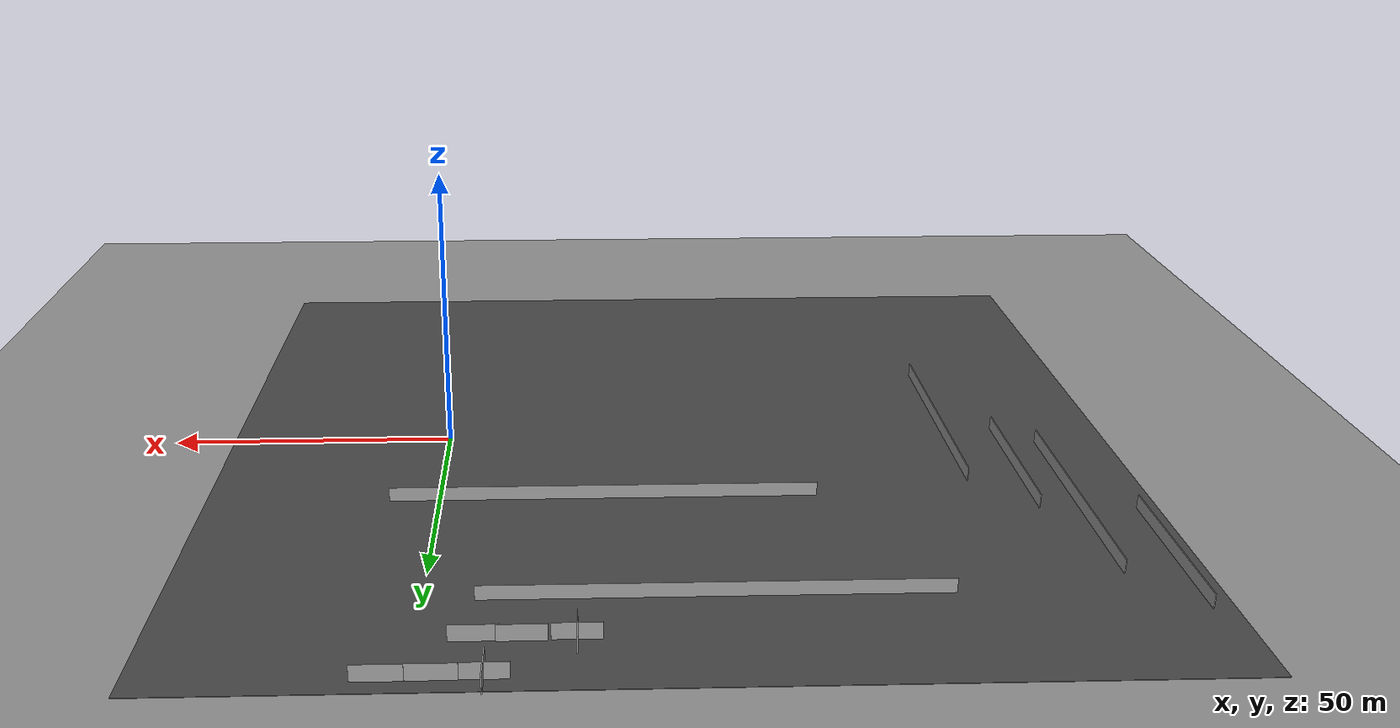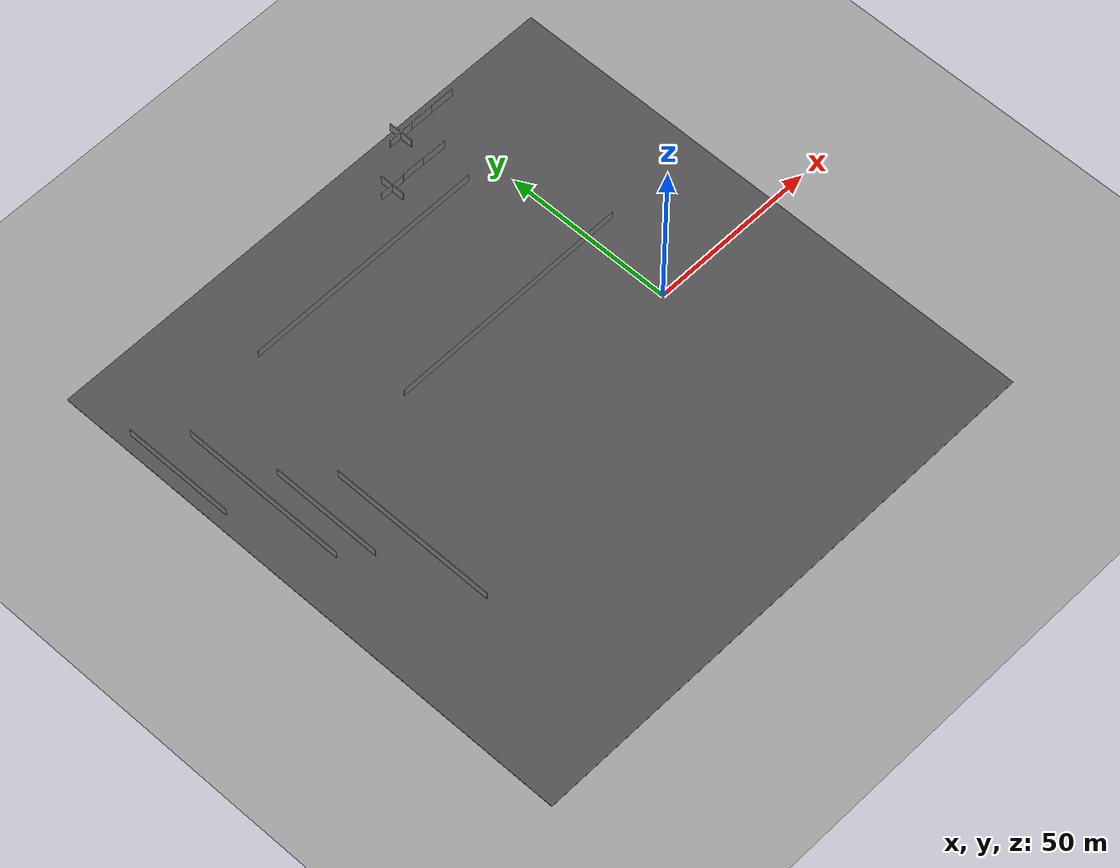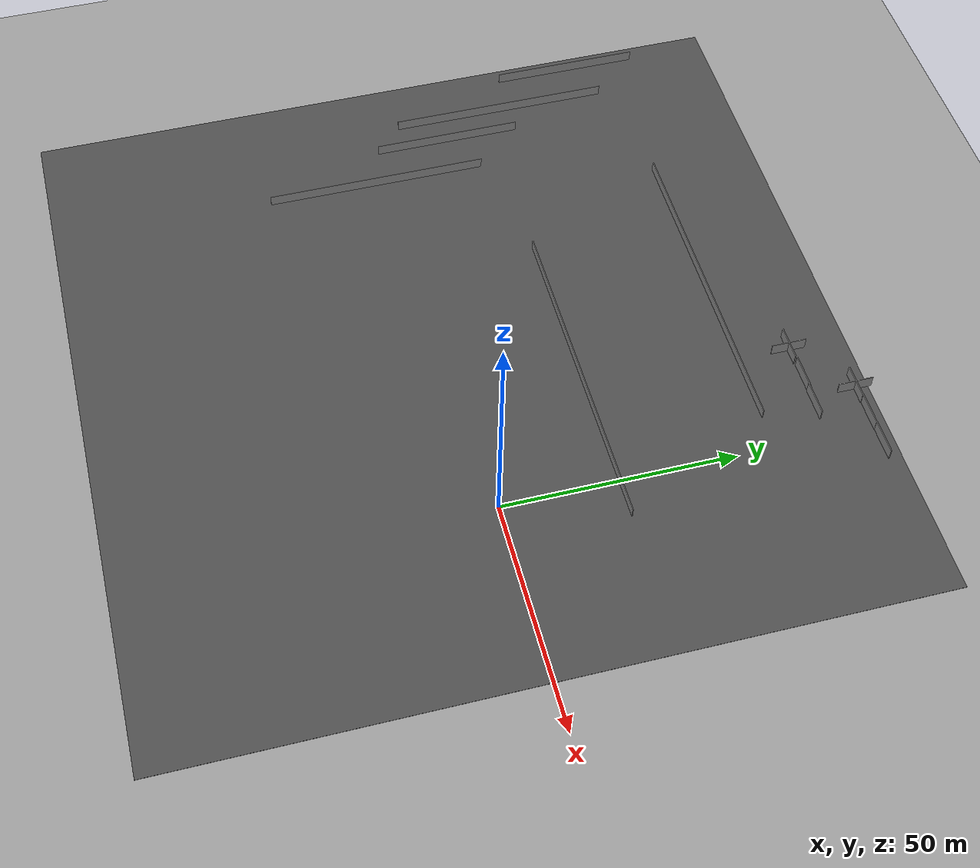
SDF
<sdf version="1.6">
 <world name="default">
  <light name="sun" type="directional">
   <pose>0 0 10 0 -0 0</pose>
   <diffuse>0.8 0.8 0.8 1</diffuse>
   <specular>0.2 0.2 0.2 1</specular>
   <attenuation>
    <range>1000</range>
    <constant>0.9</constant>
    <linear>0.01</linear>
    <quadratic>0.001</quadratic>
   </attenuation>
   <direction>0.5 0.1 -0.9</direction>
  </light>
  <scene><ambient>0.4 0.4 0.4 1</ambient><background>0.7 0.7 0.7 1</background><shadows>1</shadows></scene>
  <physics name="default_physics" default="0" type="ode">
   <max_step_size>0.01</max_step_size>
   <real_time_factor>1</real_time_factor>
   <real_time_update_rate>100</real_time_update_rate>
  </physics>
  <model name="ground_plane_0">
   <static>1</static>
   <link name="link">
    <collision name="collision">
     <geometry><plane><normal>0 0 1</normal><size>100 100</size></plane></geometry>
     <surface><friction><ode><mu>100</mu><mu2>50</mu2></ode></friction></surface>
    </collision>
    <visual name="visual">
     <cast_shadows>0</cast_shadows>
     <geometry><plane><normal>0 0 1</normal><size>100 100</size></plane></geometry>
     <material>
      <script><uri>file://media/materials/scripts/gazebo.material</uri><name>Gazebo/Grey</name></script>
     </material>
    </visual>
    <velocity_decay><linear>0</linear><angular>0</angular></velocity_decay>
   </link>
   <pose>0.497681 0 0 0 -0 0</pose>
  </model>
  <gravity>0 0 -9.8</gravity>
  <magnetic_field>6e-06 2.3e-05 -4.2e-05</magnetic_field>
  <atmosphere type="adiabatic"/>
  <spherical_coordinates>
   <surface_model>EARTH_WGS84</surface_model>
   <latitude_deg>0</latitude_deg>
   <longitude_deg>0</longitude_deg>
   <elevation>0</elevation>
   <heading_deg>0</heading_deg>
  </spherical_coordinates>
  <model name="grey_wall">
   <static>1</static>
   <link name="link">
    <pose>0 0 1.4 0 -0 0</pose>
    <collision name="collision"><geometry><box><size>7.5 0.2 2.8</size></box></geometry></collision>
    <visual name="visual">
     <cast_shadows>0</cast_shadows>
     <geometry><box><size>7.5 0.2 2.8</size></box></geometry>
     <material>
      <script>
       <uri>model://grey_wall/materials/scripts</uri>
       <uri>model://grey_wall/materials/textures</uri>
       <name>vrc/grey_wall</name>
      </script>
     </material>
    </visual>
   </link>
   <pose>-8.23619 69.5814 0 0 -0 0</pose>
  </model>
  <model name="grey_wall_clone">
   <static>1</static>
   <link name="link">
    <pose>0 0 1.4 0 -0 0</pose>
    <collision name="collision"><geometry><box><size>7.5 0.2 2.8</size></box></geometry></collision>
    <visual name="visual">
     <cast_shadows>0</cast_shadows>
     <geometry><box><size>7.5 0.2 2.8</size></box></geometry>
     <material>
      <script>
       <uri>model://grey_wall/materials/scripts</uri>
       <uri>model://grey_wall/materials/textures</uri>
       <name>vrc/grey_wall</name>
      </script>
     </material>
    </visual>
   </link>
   <pose>4.36786 79.4281 0 0 -0 0</pose>
  </model>
  <model name="grey_wall_clone_0">
   <static>1</static>
   <link name="link">
    <pose>0 0 1.4 0 -0 0</pose>
    <collision name="collision"><geometry><box><size>7.5 0.2 2.8</size></box></geometry></collision>
    <visual name="visual">
     <cast_shadows>0</cast_shadows>
     <geometry><box><size>7.5 0.2 2.8</size></box></geometry>
     <material>
      <script>
       <uri>model://grey_wall/materials/scripts</uri>
       <uri>model://grey_wall/materials/textures</uri>
       <name>vrc/grey_wall</name>
      </script>
     </material>
    </visual>
   </link>
   <pose>-15.1256 69.7042 0 0 -0 0</pose>
  </model>
  <model name="grey_wall_clone_1">
   <static>1</static>
   <link name="link">
    <pose>0 0 1.4 0 -0 0</pose>
    <collision name="collision"><geometry><box><size>7.5 0.2 2.8</size></box></geometry></collision>
    <visual name="visual">
     <cast_shadows>0</cast_shadows>
     <geometry><box><size>7.5 0.2 2.8</size></box></geometry>
     <material>
      <script>
       <uri>model://grey_wall/materials/scripts</uri>
       <uri>model://grey_wall/materials/textures</uri>
       <name>vrc/grey_wall</name>
      </script>
     </material>
    </visual>
   </link>
   <pose>-3.02478 79.3782 0 0 -0 0</pose>
  </model>
  <model name="grey_wall_clone_2_0">
   <link name="link">
    <pose>0 0 1.4 0 -0 0</pose>
    <inertial>
     <mass>1</mass>
     <inertia><ixx>1</ixx><ixy>0</ixy><ixz>0</ixz><iyy>1</iyy><iyz>0</iyz><izz>1</izz></inertia>
    </inertial>
    <visual name="ModelPreview_44::link::visual_1">
     <cast_shadows>0</cast_shadows>
     <geometry><box><size>7.5 0.2 2.8</size></box></geometry>
     <material>
      <script>
       <uri>model://grey_wall/materials/scripts</uri>
       <uri>model://grey_wall/materials/textures</uri>
       <name>vrc/grey_wall</name>
      </script>
      <ambient>1 1 1 1</ambient>
      <diffuse>1 1 1 1</diffuse>
      <specular>0 0 0 1</specular>
      <emissive>0 0 0 1</emissive>
      <shader type="vertex"><normal_map>__default__</normal_map></shader>
     </material>
    </visual>
    <visual name="visual">
     <cast_shadows>0</cast_shadows>
     <geometry><box><size>7.5 0.2 2.8</size></box></geometry>
     <material>
      <script>
       <uri>model://grey_wall/materials/scripts</uri>
       <uri>model://grey_wall/materials/textures</uri>
       <name>vrc/grey_wall</name>
      </script>
      <ambient>1 1 1 1</ambient>
      <diffuse>1 1 1 1</diffuse>
      <specular>0 0 0 1</specular>
      <emissive>0 0 0 1</emissive>
      <shader type="vertex"><normal_map>__default__</normal_map></shader>
     </material>
     <pose>0 0 0 0 -0 1.57</pose>
    </visual>
    <collision name="collision">
     <geometry><box><size>7.5 0.2 2.8</size></box></geometry>
     <surface>
      <friction>
       <ode><mu>1</mu><mu2>1</mu2><fdir1>0 0 0</fdir1><slip1>0</slip1><slip2>0</slip2></ode>
       <torsional>
        <coefficient>1</coefficient>
        <patch_radius>0</patch_radius>
        <surface_radius>0</surface_radius>
        <use_patch_radius>1</use_patch_radius>
        <ode><slip>0</slip></ode>
       </torsional>
      </friction>
      <bounce><restitution_coefficient>0</restitution_coefficient><threshold>1e+06</threshold></bounce>
      <contact>
       <collide_without_contact>0</collide_without_contact>
       <collide_without_contact_bitmask>1</collide_without_contact_bitmask>
       <collide_bitmask>1</collide_bitmask>
       <ode>
        <soft_cfm>0</soft_cfm>
        <soft_erp>0.2</soft_erp>
        <kp>1e+13</kp>
        <kd>1</kd>
        <max_vel>0.01</max_vel>
        <min_depth>0</min_depth>
       </ode>
       <bullet>
        <split_impulse>1</split_impulse>
        <split_impulse_penetration_threshold>-0.01</split_impulse_penetration_threshold>
        <soft_cfm>0</soft_cfm>
        <soft_erp>0.2</soft_erp>
        <kp>1e+13</kp>
        <kd>1</kd>
       </bullet>
      </contact>
     </surface>
    </collision>
   </link>
   <static>1</static>
   <pose>-10.0933 79.2725 0 0 -0 0</pose>
  </model>
  <model name="grey_wall_clone_2_0_clone">
   <link name="link">
    <pose>0 0 1.4 0 -0 0</pose>
    <inertial>
     <mass>1</mass>
     <inertia><ixx>1</ixx><ixy>0</ixy><ixz>0</ixz><iyy>1</iyy><iyz>0</iyz><izz>1</izz></inertia>
    </inertial>
    <visual name="ModelPreview_44::link::visual_1">
     <cast_shadows>0</cast_shadows>
     <geometry><box><size>7.5 0.2 2.8</size></box></geometry>
     <material>
      <script>
       <uri>model://grey_wall/materials/scripts</uri>
       <uri>model://grey_wall/materials/textures</uri>
       <name>vrc/grey_wall</name>
      </script>
      <ambient>1 1 1 1</ambient>
      <diffuse>1 1 1 1</diffuse>
      <specular>0 0 0 1</specular>
      <emissive>0 0 0 1</emissive>
      <shader type="vertex"><normal_map>__default__</normal_map></shader>
     </material>
    </visual>
    <visual name="visual">
     <cast_shadows>0</cast_shadows>
     <geometry><box><size>7.5 0.2 2.8</size></box></geometry>
     <material>
      <script>
       <uri>model://grey_wall/materials/scripts</uri>
       <uri>model://grey_wall/materials/textures</uri>
       <name>vrc/grey_wall</name>
      </script>
      <ambient>1 1 1 1</ambient>
      <diffuse>1 1 1 1</diffuse>
      <specular>0 0 0 1</specular>
      <emissive>0 0 0 1</emissive>
      <shader type="vertex"><normal_map>__default__</normal_map></shader>
     </material>
     <pose>0 0 0 0 -0 1.57</pose>
    </visual>
    <collision name="collision">
     <geometry><box><size>7.5 0.2 2.8</size></box></geometry>
     <surface>
      <friction>
       <ode><mu>1</mu><mu2>1</mu2><fdir1>0 0 0</fdir1><slip1>0</slip1><slip2>0</slip2></ode>
       <torsional>
        <coefficient>1</coefficient>
        <patch_radius>0</patch_radius>
        <surface_radius>0</surface_radius>
        <use_patch_radius>1</use_patch_radius>
        <ode><slip>0</slip></ode>
       </torsional>
      </friction>
      <bounce><restitution_coefficient>0</restitution_coefficient><threshold>1e+06</threshold></bounce>
      <contact>
       <collide_without_contact>0</collide_without_contact>
       <collide_without_contact_bitmask>1</collide_without_contact_bitmask>
       <collide_bitmask>1</collide_bitmask>
       <ode>
        <soft_cfm>0</soft_cfm>
        <soft_erp>0.2</soft_erp>
        <kp>1e+13</kp>
        <kd>1</kd>
        <max_vel>0.01</max_vel>
        <min_depth>0</min_depth>
       </ode>
       <bullet>
        <split_impulse>1</split_impulse>
        <split_impulse_penetration_threshold>-0.01</split_impulse_penetration_threshold>
        <soft_cfm>0</soft_cfm>
        <soft_erp>0.2</soft_erp>
        <kp>1e+13</kp>
        <kd>1</kd>
       </bullet>
      </contact>
     </surface>
    </collision>
   </link>
   <static>1</static>
   <pose>-23.0118 69.473 0 0 -0 0</pose>
  </model>
  <model name="Untitled">
   <pose>-62.3629 34.3256 0 0 -0 0</pose>
   <link name="Wall_11">
    <collision name="Wall_11_Collision">
     <geometry><box><size>32.75 0.15 2.5</size></box></geometry>
     <pose>0 0 1.25 0 -0 0</pose>
    </collision>
    <visual name="Wall_11_Visual">
     <pose>0 0 1.25 0 -0 0</pose>
     <geometry><box><size>32.75 0.15 2.5</size></box></geometry>
     <material>
      <script><uri>file://media/materials/scripts/gazebo.material</uri><name>Gazebo/Grey</name></script>
      <ambient>1 1 1 1</ambient>
     </material>
    </visual>
    <pose>-54.5541 13.5007 0 0 0 -1.5708</pose>
   </link>
   <link name="Wall_13">
    <collision name="Wall_13_Collision">
     <geometry><box><size>49 0.15 2.5</size></box></geometry>
     <pose>0 0 1.25 0 -0 0</pose>
    </collision>
    <visual name="Wall_13_Visual">
     <pose>0 0 1.25 0 -0 0</pose>
     <geometry><box><size>49 0.15 2.5</size></box></geometry>
     <material>
      <script><uri>file://media/materials/scripts/gazebo.material</uri><name>Gazebo/Grey</name></script>
      <ambient>1 1 1 1</ambient>
     </material>
    </visual>
    <pose>-44.965 -5.37572 0 0 0 -1.5708</pose>
   </link>
   <link name="Wall_16">
    <collision name="Wall_16_Collision">
     <geometry><box><size>72.5 0.15 2.5</size></box></geometry>
     <pose>0 0 1.25 0 -0 0</pose>
    </collision>
    <visual name="Wall_16_Visual">
     <pose>0 0 1.25 0 -0 0</pose>
     <geometry><box><size>72.5 0.15 2.5</size></box></geometry>
     <material>
      <script><uri>file://media/materials/scripts/gazebo.material</uri><name>Gazebo/Grey</name></script>
      <ambient>1 1 1 1</ambient>
     </material>
    </visual>
    <pose>18.3791 23.8438 0 0 -0 0</pose>
   </link>
   <static>1</static>
  </model>
  <model name="Untitled_clone">
   <pose>-46.0989 1.1125 0 0 -0 0</pose>
   <link name="Wall_11">
    <collision name="Wall_11_Collision">
     <geometry><box><size>32.75 0.15 2.5</size></box></geometry>
     <pose>0 0 1.25 0 -0 0</pose>
    </collision>
    <visual name="Wall_11_Visual">
     <pose>0 0 1.25 0 -0 0</pose>
     <geometry><box><size>32.75 0.15 2.5</size></box></geometry>
     <material>
      <script><uri>file://media/materials/scripts/gazebo.material</uri><name>Gazebo/Grey</name></script>
      <ambient>1 1 1 1</ambient>
     </material>
    </visual>
    <pose>-54.5541 13.5007 0 0 0 -1.5708</pose>
   </link>
   <link name="Wall_13">
    <collision name="Wall_13_Collision">
     <geometry><box><size>49 0.15 2.5</size></box></geometry>
     <pose>0 0 1.25 0 -0 0</pose>
    </collision>
    <visual name="Wall_13_Visual">
     <pose>0 0 1.25 0 -0 0</pose>
     <geometry><box><size>49 0.15 2.5</size></box></geometry>
     <material>
      <script><uri>file://media/materials/scripts/gazebo.material</uri><name>Gazebo/Grey</name></script>
      <ambient>1 1 1 1</ambient>
     </material>
    </visual>
    <pose>-44.965 -5.37572 0 0 0 -1.5708</pose>
   </link>
   <link name="Wall_16">
    <collision name="Wall_16_Collision">
     <geometry><box><size>72.5 0.15 2.5</size></box></geometry>
     <pose>0 0 1.25 0 -0 0</pose>
    </collision>
    <visual name="Wall_16_Visual">
     <pose>0 0 1.25 0 -0 0</pose>
     <geometry><box><size>72.5 0.15 2.5</size></box></geometry>
     <material>
      <script><uri>file://media/materials/scripts/gazebo.material</uri><name>Gazebo/Grey</name></script>
      <ambient>1 1 1 1</ambient>
     </material>
    </visual>
    <pose>18.3791 23.8438 0 0 -0 0</pose>
   </link>
   <static>1</static>
  </model>
  <model name="asphalt_plane2_1_0">
   <link name="link">
    <inertial>
     <mass>1</mass>
     <inertia><ixx>1</ixx><ixy>0</ixy><ixz>0</ixz><iyy>1</iyy><iyz>0</iyz><izz>1</izz></inertia>
    </inertial>
    <visual name="visual">
     <cast_shadows>0</cast_shadows>
     <geometry><box><size>160 160 0.1</size></box></geometry>
     <material>
      <script>
       <uri>model://asphalt_plane/materials/scripts</uri>
       <uri>model://asphalt_plane/materials/textures</uri>
       <name>vrc/asphalt</name>
      </script>
      <ambient>0.5 0.5 0.5 1</ambient>
      <diffuse>0.5 0.5 0.5 1</diffuse>
      <specular>0.2 0.2 0.2 1</specular>
      <emissive>0 0 0 1</emissive>
      <shader type="vertex"><normal_map>__default__</normal_map></shader>
     </material>
    </visual>
    <collision name="collision">
     <geometry><box><size>20 20 0.1</size></box></geometry>
     <surface>
      <friction>
       <ode><mu>1</mu><mu2>1</mu2><fdir1>0 0 0</fdir1><slip1>0</slip1><slip2>0</slip2></ode>
       <torsional>
        <coefficient>1</coefficient>
        <patch_radius>0</patch_radius>
        <surface_radius>0</surface_radius>
        <use_patch_radius>1</use_patch_radius>
        <ode><slip>0</slip></ode>
       </torsional>
      </friction>
      <bounce><restitution_coefficient>0</restitution_coefficient><threshold>1e+06</threshold></bounce>
      <contact>
       <collide_without_contact>0</collide_without_contact>
       <collide_without_contact_bitmask>1</collide_without_contact_bitmask>
       <collide_bitmask>1</collide_bitmask>
       <ode>
        <soft_cfm>0</soft_cfm>
        <soft_erp>0.2</soft_erp>
        <kp>1e+13</kp>
        <kd>1</kd>
        <max_vel>0.01</max_vel>
        <min_depth>0</min_depth>
       </ode>
       <bullet>
        <split_impulse>1</split_impulse>
        <split_impulse_penetration_threshold>-0.01</split_impulse_penetration_threshold>
        <soft_cfm>0</soft_cfm>
        <soft_erp>0.2</soft_erp>
        <kp>1e+13</kp>
        <kd>1</kd>
       </bullet>
      </contact>
     </surface>
    </collision>
   </link>
   <static>1</static>
   <pose>-40.4636 2.30931 0 0 -0 0</pose>
  </model>
 </world>
</sdf>
